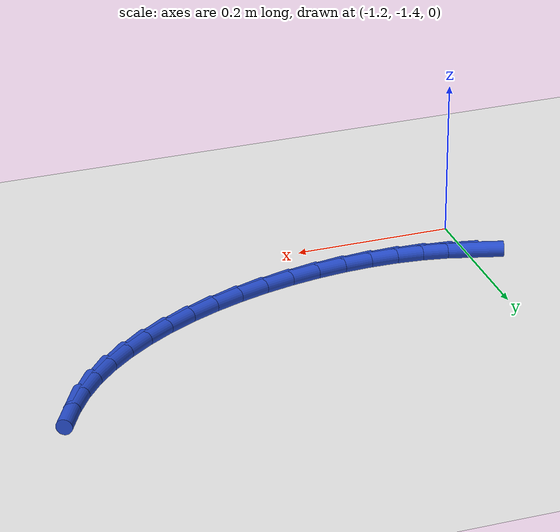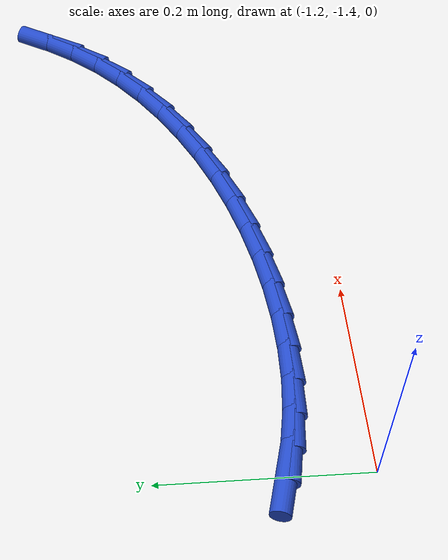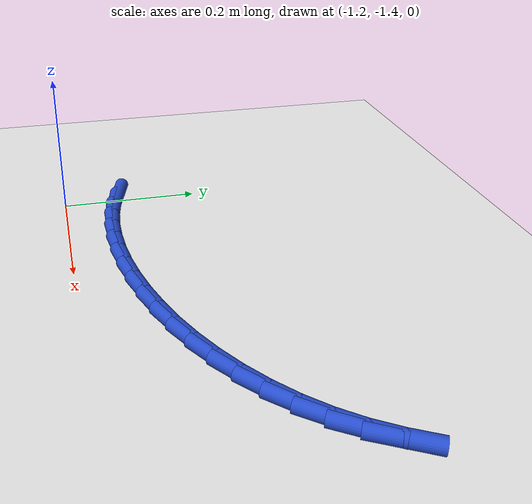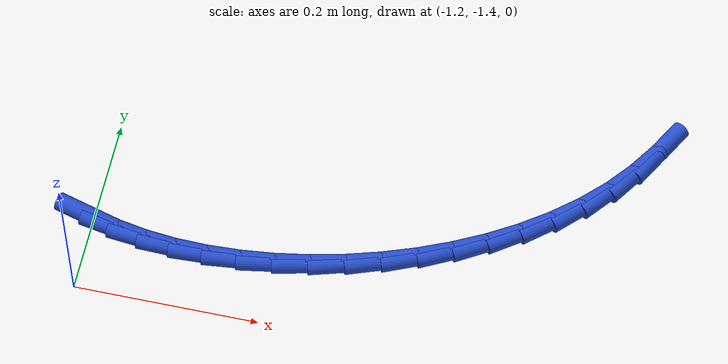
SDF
<sdf version="1.6">
 <world name="default">
  <model name="ground_plane">
   <static>1</static>
   <link name="link">
    <collision name="collision">
     <geometry><plane><normal>0 0 1</normal><size>100 100</size></plane></geometry>
     <surface><friction><ode><mu>100</mu><mu2>50</mu2></ode></friction></surface>
    </collision>
    <visual name="visual">
     <cast_shadows>0</cast_shadows>
     <geometry><plane><normal>0 0 1</normal><size>100 100</size></plane></geometry>
     <material>
      <script><uri>file://media/materials/scripts/gazebo.material</uri><name>Gazebo/WhiteGlow</name></script>
     </material>
    </visual>
   </link>
  </model>
  <model name="line">
   <link name="link_174">
    <pose>-1.2017696081075986 -1.3185942382762337 0.01 0 1.57 -0.27228841246467794</pose>
    <collision name="collision">
     <geometry><cylinder><radius>0.01</radius><length>0.08</length></cylinder></geometry>
    </collision>
    <visual name="visual">
     <material>
      <script><name>Gazebo/Blue</name><uri>file://media/materials/scripts/gazebo.material</uri></script>
     </material>
     <geometry><cylinder><radius>0.01</radius><length>0.08</length></cylinder></geometry>
    </visual>
   </link>
   <link name="link_175">
    <pose>-1.171899861009667 -1.3269345704712676 0.01 0 1.57 -0.17986892729431264</pose>
    <collision name="collision">
     <geometry><cylinder><radius>0.01</radius><length>0.08</length></cylinder></geometry>
    </collision>
    <visual name="visual">
     <material>
      <script><name>Gazebo/Blue</name><uri>file://media/materials/scripts/gazebo.material</uri></script>
     </material>
     <geometry><cylinder><radius>0.01</radius><length>0.08</length></cylinder></geometry>
    </visual>
   </link>
   <link name="link_176">
    <pose>-1.140014917909434 -1.3327323410208947 0.01 0 1.57 -0.09770836598278598</pose>
    <collision name="collision">
     <geometry><cylinder><radius>0.01</radius><length>0.08</length></cylinder></geometry>
    </collision>
    <visual name="visual">
     <material>
      <script><name>Gazebo/Blue</name><uri>file://media/materials/scripts/gazebo.material</uri></script>
     </material>
     <geometry><cylinder><radius>0.01</radius><length>0.08</length></cylinder></geometry>
    </visual>
   </link>
   <link name="link_177">
    <pose>-1.1064272073408166 -1.3360246250747165 0.01 0 1.57 -0.023648957908337313</pose>
    <collision name="collision">
     <geometry><cylinder><radius>0.01</radius><length>0.08</length></cylinder></geometry>
    </collision>
    <visual name="visual">
     <material>
      <script><name>Gazebo/Blue</name><uri>file://media/materials/scripts/gazebo.material</uri></script>
     </material>
     <geometry><cylinder><radius>0.01</radius><length>0.08</length></cylinder></geometry>
    </visual>
   </link>
   <link name="link_178">
    <pose>-1.0714691406006185 -1.336851501079226 0.01 0 1.57 0.04437725428307564</pose>
    <collision name="collision">
     <geometry><cylinder><radius>0.01</radius><length>0.08</length></cylinder></geometry>
    </collision>
    <visual name="visual">
     <material>
      <script><name>Gazebo/Blue</name><uri>file://media/materials/scripts/gazebo.material</uri></script>
     </material>
     <geometry><cylinder><radius>0.01</radius><length>0.08</length></cylinder></geometry>
    </visual>
   </link>
   <link name="link_179">
    <pose>-1.0354731289856438 -1.3352530474809157 0.01 0 1.57 0.1081199593093099</pose>
    <collision name="collision">
     <geometry><cylinder><radius>0.01</radius><length>0.08</length></cylinder></geometry>
    </collision>
    <visual name="visual">
     <material>
      <script><name>Gazebo/Blue</name><uri>file://media/materials/scripts/gazebo.material</uri></script>
     </material>
     <geometry><cylinder><radius>0.01</radius><length>0.08</length></cylinder></geometry>
    </visual>
   </link>
   <link name="link_180">
    <pose>-0.998771583792697 -1.331269342726279 0.01 0 1.57 0.16907648988646523</pose>
    <collision name="collision">
     <geometry><cylinder><radius>0.01</radius><length>0.08</length></cylinder></geometry>
    </collision>
    <visual name="visual">
     <material>
      <script><name>Gazebo/Blue</name><uri>file://media/materials/scripts/gazebo.material</uri></script>
     </material>
     <geometry><cylinder><radius>0.01</radius><length>0.08</length></cylinder></geometry>
    </visual>
   </link>
   <link name="link_181">
    <pose>-0.961696916318582 -1.3249404652618086 0.01 0 1.57 0.22856024248264767</pose>
    <collision name="collision">
     <geometry><cylinder><radius>0.01</radius><length>0.08</length></cylinder></geometry>
    </collision>
    <visual name="visual">
     <material>
      <script><name>Gazebo/Blue</name><uri>file://media/materials/scripts/gazebo.material</uri></script>
     </material>
     <geometry><cylinder><radius>0.01</radius><length>0.08</length></cylinder></geometry>
    </visual>
   </link>
   <link name="link_182">
    <pose>-0.9245815378601028 -1.3163064935339988 0.01 0 1.57 0.2877625375705931</pose>
    <collision name="collision">
     <geometry><cylinder><radius>0.01</radius><length>0.08</length></cylinder></geometry>
    </collision>
    <visual name="visual">
     <material>
      <script><name>Gazebo/Blue</name><uri>file://media/materials/scripts/gazebo.material</uri></script>
     </material>
     <geometry><cylinder><radius>0.01</radius><length>0.08</length></cylinder></geometry>
    </visual>
   </link>
   <link name="link_183">
    <pose>-0.887757859714064 -1.3054075059893413 0.01 0 1.57 0.34780561485204187</pose>
    <collision name="collision">
     <geometry><cylinder><radius>0.01</radius><length>0.08</length></cylinder></geometry>
    </collision>
    <visual name="visual">
     <material>
      <script><name>Gazebo/Blue</name><uri>file://media/materials/scripts/gazebo.material</uri></script>
     </material>
     <geometry><cylinder><radius>0.01</radius><length>0.08</length></cylinder></geometry>
    </visual>
   </link>
   <link name="link_184">
    <pose>-0.8515582931772677 -1.2922835810743292 0.01 0 1.57 0.4097865544546982</pose>
    <collision name="collision">
     <geometry><cylinder><radius>0.01</radius><length>0.08</length></cylinder></geometry>
    </collision>
    <visual name="visual">
     <material>
      <script><name>Gazebo/Blue</name><uri>file://media/materials/scripts/gazebo.material</uri></script>
     </material>
     <geometry><cylinder><radius>0.01</radius><length>0.08</length></cylinder></geometry>
    </visual>
   </link>
   <link name="link_185">
    <pose>-0.8163152495465206 -1.2769747972354557 0.01 0 1.57 0.4748116167761909</pose>
    <collision name="collision">
     <geometry><cylinder><radius>0.01</radius><length>0.08</length></cylinder></geometry>
    </collision>
    <visual name="visual">
     <material>
      <script><name>Gazebo/Blue</name><uri>file://media/materials/scripts/gazebo.material</uri></script>
     </material>
     <geometry><cylinder><radius>0.01</radius><length>0.08</length></cylinder></geometry>
    </visual>
   </link>
   <link name="link_186">
    <pose>-0.7823611401186249 -1.2595212329192143 0.01 0 1.57 0.5440186719965747</pose>
    <collision name="collision">
     <geometry><cylinder><radius>0.01</radius><length>0.08</length></cylinder></geometry>
    </collision>
    <visual name="visual">
     <material>
      <script><name>Gazebo/Blue</name><uri>file://media/materials/scripts/gazebo.material</uri></script>
     </material>
     <geometry><cylinder><radius>0.01</radius><length>0.08</length></cylinder></geometry>
    </visual>
   </link>
   <link name="link_187">
    <pose>-0.7500283761903858 -1.2399629665720977 0.01 0 1.57 0.6185822171867118</pose>
    <collision name="collision">
     <geometry><cylinder><radius>0.01</radius><length>0.08</length></cylinder></geometry>
    </collision>
    <visual name="visual">
     <material>
      <script><name>Gazebo/Blue</name><uri>file://media/materials/scripts/gazebo.material</uri></script>
     </material>
     <geometry><cylinder><radius>0.01</radius><length>0.08</length></cylinder></geometry>
    </visual>
   </link>
   <link name="link_188">
    <pose>-0.7196493690586057 -1.2183400766405983 0.01 0 1.57 0.699690968972319</pose>
    <collision name="collision">
     <geometry><cylinder><radius>0.01</radius><length>0.08</length></cylinder></geometry>
    </collision>
    <visual name="visual">
     <material>
      <script><name>Gazebo/Blue</name><uri>file://media/materials/scripts/gazebo.material</uri></script>
     </material>
     <geometry><cylinder><radius>0.01</radius><length>0.08</length></cylinder></geometry>
    </visual>
   </link>
   <link name="link_189">
    <pose>-0.6915565300200905 -1.1946926415712105 0.01 0 1.57 0.7884827545312243</pose>
    <collision name="collision">
     <geometry><cylinder><radius>0.01</radius><length>0.08</length></cylinder></geometry>
    </collision>
    <visual name="visual">
     <material>
      <script><name>Gazebo/Blue</name><uri>file://media/materials/scripts/gazebo.material</uri></script>
     </material>
     <geometry><cylinder><radius>0.01</radius><length>0.08</length></cylinder></geometry>
    </visual>
   </link>
   <link name="link_190">
    <pose>-0.6660822703716435 -1.1690607398104262 0.01 0 1.57 0.8857739582303903</pose>
    <collision name="collision">
     <geometry><cylinder><radius>0.01</radius><length>0.08</length></cylinder></geometry>
    </collision>
    <visual name="visual">
     <material>
      <script><name>Gazebo/Blue</name><uri>file://media/materials/scripts/gazebo.material</uri></script>
     </material>
     <geometry><cylinder><radius>0.01</radius><length>0.08</length></cylinder></geometry>
    </visual>
   </link>
   <link name="link_191">
    <pose>-0.6435539152034966 -1.1414863205740875 0.01 0 1.57 0.9826774160606827</pose>
    <collision name="collision">
     <geometry><cylinder><radius>0.01</radius><length>0.08</length></cylinder></geometry>
    </collision>
    <visual name="visual">
     <material>
      <script><name>Gazebo/Blue</name><uri>file://media/materials/scripts/gazebo.material</uri></script>
     </material>
     <geometry><cylinder><radius>0.01</radius><length>0.08</length></cylinder></geometry>
    </visual>
   </link>
   <link name="link_192">
    <pose>-0.6239777200970044 -1.1121294263932169 0.01 0 1.57 1.0632594947087135</pose>
    <collision name="collision">
     <geometry><cylinder><radius>0.01</radius><length>0.08</length></cylinder></geometry>
    </collision>
    <visual name="visual">
     <material>
      <script><name>Gazebo/Blue</name><uri>file://media/materials/scripts/gazebo.material</uri></script>
     </material>
     <geometry><cylinder><radius>0.01</radius><length>0.08</length></cylinder></geometry>
    </visual>
   </link>
  </model>
 </world>
</sdf>
